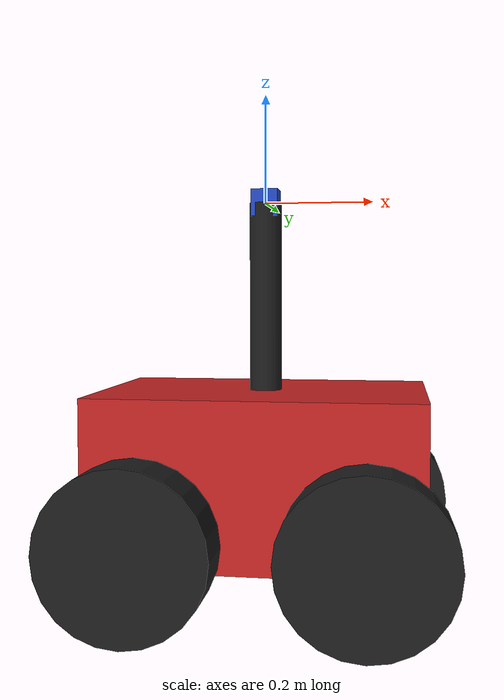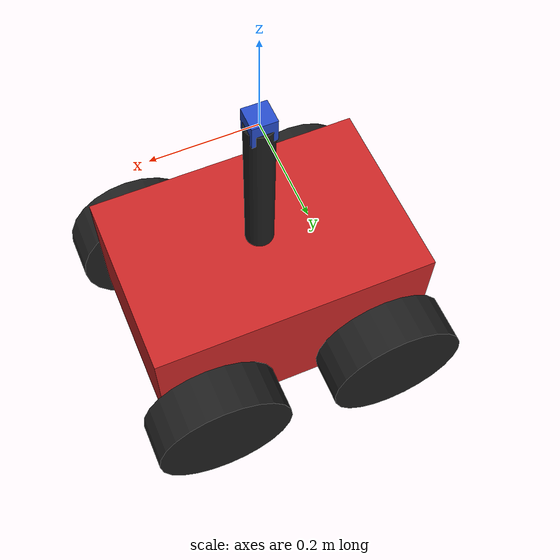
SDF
<sdf version='1.9'>
  <model name='robot'>
    <link name='base_origin'>
      <inertial>
        <pose>0 2.117582368135751e-17 -0.5125000000000001 0 0 0</pose>
        <mass>6</mass>
        <inertia>
          <ixx>9.9468749999999995e-06</ixx>
          <ixy>0</ixy>
          <ixz>0</ixz>
          <iyy>9.0468750000000014e-06</iyy>
          <iyz>-1.5881867761018069e-23</iyz>
          <izz>1.01e-05</izz>
        </inertia>
      </inertial>
      <visual name='base_origin_fixed_joint_lump__base_lidar_visual'>
        <pose>0 0 -0.175 0 0 0</pose>
        <geometry>
          <cylinder>
            <length>0.34999999999999998</length>
            <radius>0.029999999999999999</radius>
          </cylinder>
        </geometry>
        <material>
          <script>
            <name>Gazebo/Black</name>
            <uri>file://media/materials/scripts/gazebo.material</uri>
          </script>
        </material>
      </visual>
      <visual name='base_origin_fixed_joint_lump__base_link_visual_1'>
        <pose>0 0 -0.5 0 0 0</pose>
        <geometry>
          <box>
            <size>0.6 0.4 0.3</size>
          </box>
        </geometry>
        <material>
          <script>
            <name>Gazebo/Red</name>
            <uri>file://media/materials/scripts/gazebo.material</uri>
          </script>
        </material>
      </visual>
    </link>

    <frame name='base_lidar_frame' attached_to='base_origin'>
      <pose>0 0 -0.175 0 -0 0</pose>
    </frame>
    <frame name='base_lidar' attached_to='base_lidar_frame' />

    <frame name='left_front_frame' attached_to='base_link'>
      <pose>0.2 -0.25 0.15 1.57 -0 0</pose>
    </frame>
    <frame name='left_front_wheel' attached_to='left_front_frame' />
    <frame name='left_rear_frame' attached_to='base_link'>
      <pose>-0.2 -0.25 0.15 1.57 -0 0</pose>
    </frame>
    <frame name='left_rear_wheel' attached_to='left_rear_frame' />
    <frame name='right_rear_frame' attached_to='base_link'>
      <pose>-0.2 0.25 0.15 -1.57 0 0</pose>
    </frame>
    <frame name='right_rear_wheel' attached_to='right_rear_frame' />
    <frame name='rigth_front_frame' attached_to='base_link'>
      <pose>0.2 0.25 0.15 -1.57 0 0</pose>
    </frame>
    <frame name='right_front_wheel' attached_to='rigth_front_frame' />
    <frame name='base_link_frame' attached_to='base_origin'>
      <pose>0 0 -0.75 0 -0 0</pose>
    </frame>
    <frame name='base_link' attached_to='base_link_frame' />

    <!-- 新增：base_link的传感器挂载点 -->
    <link name="base_link_sensors">
      <!-- 传感器挂载点的惯性参数（轻量化） -->
      <inertial>
        <mass>0.001</mass>
        <inertia>
          <ixx>0.000001</ixx>
          <iyy>0.000001</iyy>
          <izz>0.000001</izz>
          <ixy>0</ixy>
          <ixz>0</ixz>
          <iyz>0</iyz>
        </inertia>
      </inertial>
      <sensor name="imu_sensor" type="imu">
        <pose relative_to="base_link_sensors">0 0 0 0 0 0</pose> <!-- IMU在挂载点中心 -->
        <always_on>1</always_on>
        <update_rate>200</update_rate>
        <visualize>true</visualize>
        <topic>imu</topic>
      </sensor>

      <sensor name='sensor_contact' type='contact'>
        <pose relative_to="base_link">0 0 0 0 0 0</pose> <!-- 接触传感器在base_link中心 -->
        <contact>
          <collision>collision</collision>
        </contact>
      </sensor>
    </link>

    <link name="base_lidar_sensors">
      <inertial>
        <mass>0.001</mass>
        <inertia>
          <ixx>0.000001</ixx>
          <iyy>0.000001</iyy>
          <izz>0.000001</izz>
          <ixy>0</ixy>
          <ixz>0</ixz>
          <iyz>0</iyz>
        </inertia>
      </inertial>

      <sensor name='gpu_lidar' type='gpu_lidar'>
        <pose relative_to='lidar_frame'>0 0 0 0 0 0</pose> <!-- 激光雷达使用lidar_frame坐标系 -->
        <topic>lidar</topic>
        <update_rate>10</update_rate>
        <ray>
          <scan>
            <horizontal>
              <samples>200</samples>
              <resolution>1.0</resolution>
              <min_angle>0</min_angle>
              <max_angle>6.2831852</max_angle>
            </horizontal>
            <vertical>
              <samples>256</samples>
              <min_angle>-1.57</min_angle>
              <max_angle>0.2</max_angle>
            </vertical>
          </scan>
          <range>
            <min>0.08</min>
            <max>7.0</max>
            <resolution>0.01</resolution>
          </range>
        </ray>
        <noise>
          <type>gaussian</type>
          <mean>0.0</mean>
          <stddev>0.01</stddev>
        </noise>
        <always_on>1</always_on>
        <visualize>true</visualize>
      </sensor>
    </link>

    <joint name="lidar_frame_to_base_lidar_sensors" type="fixed">
      <parent>lidar_frame</parent>
      <child>base_lidar_sensors</child>
      <pose>0 0 0 0 0 0</pose> <!-- 将传感器挂载点与base_link对齐 -->
    </joint>

    <!-- 将传感器挂载点连接到base_link -->
    <joint name="base_link_to_sensors" type="fixed">
      <parent>base_link</parent>
      <child>base_link_sensors</child>
      <pose>0 0 0 0 0 0</pose>
    </joint>

    <!-- 激光雷达坐标系定义 -->
    <frame name="lidar_frame" attached_to="base_link">
      <pose>0 0 0.40 0 0 0</pose> <!-- 激光雷达在挂载点上方0.6米 -->
    </frame>

    <!-- 安装到base_link的传感器 -->

    <link name="left_front_link">
      <pose relative_to="base_origin">0.2 -0.25 -0.6 1.57 0 0</pose>
      <inertial>
        <mass>5</mass>
        <inertia>
          <ixx>0.01</ixx>
          <iyy>0.01</iyy>
          <izz>0.01</izz>
          <ixy>0</ixy>
          <ixz>0</ixz>
          <iyz>0</iyz>
        </inertia>
      </inertial>
      <visual name='left_rear_wheel_visual'>
        <pose>0 0 0 0 0 0</pose>
        <geometry>
          <cylinder>
            <length>0.1</length>
            <radius>0.15</radius>
          </cylinder>
        </geometry>
        <material>
          <script>
            <name>Gazebo/Black</name>
            <uri>file://media/materials/scripts/gazebo.material</uri>
          </script>
        </material>
      </visual>
      <collision name='left_rear_wheel_collision'>
        <pose>0 0 0 0 0 0</pose>
        <geometry>
          <cylinder>
            <length>0.1</length>
            <radius>0.15</radius>
          </cylinder>
        </geometry>
      </collision>
    </link>

    <link name="left_rear_link">
      <pose relative_to="base_origin">-0.2 -0.25 -0.6 1.57 0 0</pose>
      <inertial>
        <mass>5</mass>
        <inertia>
          <ixx>0.01</ixx>
          <iyy>0.01</iyy>
          <izz>0.01</izz>
          <ixy>0</ixy>
          <ixz>0</ixz>
          <iyz>0</iyz>
        </inertia>
      </inertial>
      <visual name='left_rear_wheel_visual'>
        <pose>0 0 0 0 0 0</pose>
        <geometry>
          <cylinder>
            <length>0.1</length>
            <radius>0.15</radius>
          </cylinder>
        </geometry>
        <material>
          <script>
            <name>Gazebo/Black</name>
            <uri>file://media/materials/scripts/gazebo.material</uri>
          </script>
        </material>
      </visual>
      <collision name='left_rear_wheel_collision'>
        <pose>0 0 0 0 0 0</pose>
        <geometry>
          <cylinder>
            <length>0.1</length>
            <radius>0.15</radius>
          </cylinder>
        </geometry>
      </collision>
    </link>

    <link name="right_front_link">
      <pose relative_to="base_origin">-0.2 0.25 -0.6 -1.57 0 0</pose>
      <inertial>
        <mass>5</mass>
        <inertia>
          <ixx>0.01</ixx>
          <iyy>0.01</iyy>
          <izz>0.01</izz>
          <ixy>0</ixy>
          <ixz>0</ixz>
          <iyz>0</iyz>
        </inertia>
      </inertial>
      <visual name='right_rear_wheel_visual'>
        <pose>0 0 0 0 0 0</pose>
        <geometry>
          <cylinder>
            <length>0.1</length>
            <radius>0.15</radius>
          </cylinder>
        </geometry>
        <material>
          <script>
            <name>Gazebo/Black</name>
            <uri>file://media/materials/scripts/gazebo.material</uri>
          </script>
        </material>
      </visual>
      <collision name='right_rear_wheel_collision'>
        <pose>0 0 0 0 0 0</pose>
        <geometry>
          <cylinder>
            <length>0.1</length>
            <radius>0.15</radius>
          </cylinder>
        </geometry>
      </collision>
    </link>

    <link name="right_rear_link">
      <pose relative_to="base_origin">0.2 0.25 -0.6 -1.57 0 0</pose>
      <inertial>
        <mass>5</mass>
        <inertia>
          <ixx>0.01</ixx>
          <iyy>0.01</iyy>
          <izz>0.01</izz>
          <ixy>0</ixy>
          <ixz>0</ixz>
          <iyz>0</iyz>
        </inertia>
      </inertial>
      <visual name='right_rear_wheel_visual'>
        <pose>0 0 0 0 0 0</pose>
        <geometry>
          <cylinder>
            <length>0.1</length>
            <radius>0.15</radius>
          </cylinder>
        </geometry>
        <material>
          <script>
            <name>Gazebo/Black</name>
            <uri>file://media/materials/scripts/gazebo.material</uri>
          </script>
        </material>
      </visual>
      <collision name='right_rear_wheel_collision'>
        <pose>0 0 0 0 0 0</pose>
        <geometry>
          <cylinder>
            <length>0.1</length>
            <radius>0.15</radius>
          </cylinder>
        </geometry>
      </collision>
    </link>

    <joint name='left_front_joint' type='revolute'>
      <parent>base_origin</parent>
      <child>left_front_link</child>
      <axis>
        <xyz expressed_in="__model__">0 1 0</xyz>
        <limit>
          <lower>-1.79769e+308</lower>
          <upper>1.79769e+308</upper>
        </limit>
      </axis>
    </joint>

    <joint name='left_rear_joint' type='revolute'>
      <parent>base_origin</parent>
      <child>left_rear_link</child>
      <axis>
        <xyz expressed_in="__model__">0 1 0</xyz>
        <limit>
          <lower>-1.79769e+308</lower>
          <upper>1.79769e+308</upper>
        </limit>
      </axis>
    </joint>

    <joint name='right_front_joint' type='revolute'>
      <parent>base_origin</parent>
      <child>right_front_link</child>
      <axis>
        <xyz expressed_in="__model__">0 1 0</xyz>
        <limit>
          <lower>-1.79769e+308</lower>
          <upper>1.79769e+308</upper>
        </limit>
      </axis>
    </joint>

    <joint name='right_rear_joint' type='revolute'>
      <parent>base_origin</parent>
      <child>right_rear_link</child>
      <axis>
        <xyz expressed_in="__model__">0 1 0</xyz>
        <limit>
          <lower>-1.79769e+308</lower>
          <upper>1.79769e+308</upper>
        </limit>
      </axis>
    </joint>

    <!-- 前置相机连杆 -->
    <link name="front_camera_link">
      <inertial>
        <mass>0.001</mass>
        <inertia>
          <ixx>1e-6</ixx>
          <iyy>1e-6</iyy>
          <izz>1e-6</izz>
          <ixy>0</ixy>
          <ixz>0</ixz>
          <iyz>0</iyz>
        </inertia>
      </inertial>
      <visual name="front_camera_visual">
        <geometry>
          <box>
            <size>0.05 0.05 0.05</size>
          </box>
        </geometry>
        <material>
          <script>
            <name>Gazebo/Blue</name>
            <uri>file://media/materials/scripts/gazebo.material</uri>
          </script>
        </material>
      </visual>
      <collision name="front_camera_collision">
        <geometry>
          <box>
            <size>0.05 0.05 0.05</size>
          </box>
        </geometry>
      </collision>

      <!-- 相机传感器 -->
      <sensor name="front_camera" type="camera">
        <pose>0 0 0 0 0 0</pose>
        <update_rate>20</update_rate>
        <camera>
          <horizontal_fov>1.047</horizontal_fov>
          <width>1280</width>
          <height>720</height>
          <format>R8G8B8</format>
          <clip>
            <near>0.1</near>
            <far>100</far>
          </clip>
          <!-- 自动保存每一帧图片 -->
          <save enabled="true">
            <path>/home/fins/Desktop/videos</path>
            <format>jpg</format>  <!-- 明确指定格式 -->
            <quality>100</quality>  <!-- 图像质量（0-100） -->
          </save>
        </camera>
        <always_on>1</always_on>
        <visualize>true</visualize>
        <!-- 发布图像话题 -->
        <topic>front_camera/image_raw</topic>
      </sensor>
    </link>

    <!-- 将相机固定到机器人前端 -->
    <joint name="base_to_front_camera" type="fixed">
      <parent>base_origin</parent>
      <child>front_camera_link</child>
      <pose>0.35 0 0.2 0 0 0</pose> <!-- x=0.35m 表示在机器人前方 -->
    </joint>

    <plugin filename="libignition-gazebo-mecanum-drive-system.so"
      name="ignition::gazebo::systems::MecanumDrive">
      <chassis_link>base_origin</chassis_link>
      <front_left_joint>right_front_joint</front_left_joint>
      <front_right_joint>left_front_joint</front_right_joint>
      <back_left_joint>right_rear_joint</back_left_joint>
      <back_right_joint>left_rear_joint</back_right_joint>
      <wheel_radius>0.15</wheel_radius>
      <wheel_separation_x>0.5</wheel_separation_x>
      <wheel_separation_y>0.4</wheel_separation_y>
      <topic>cmd_vel</topic>
    </plugin>

  </model>

</sdf>
